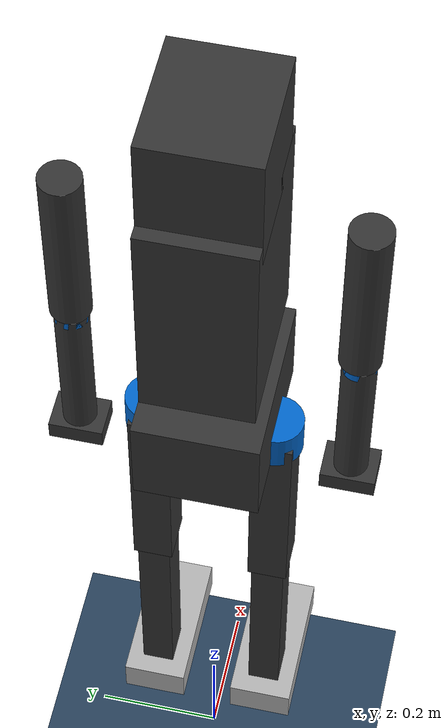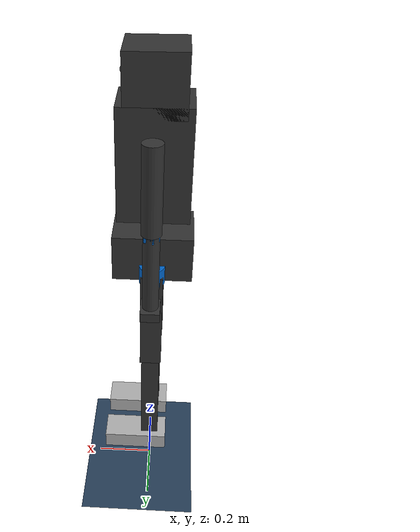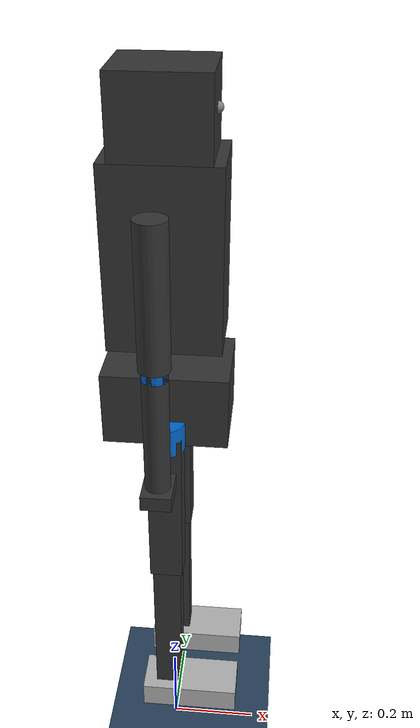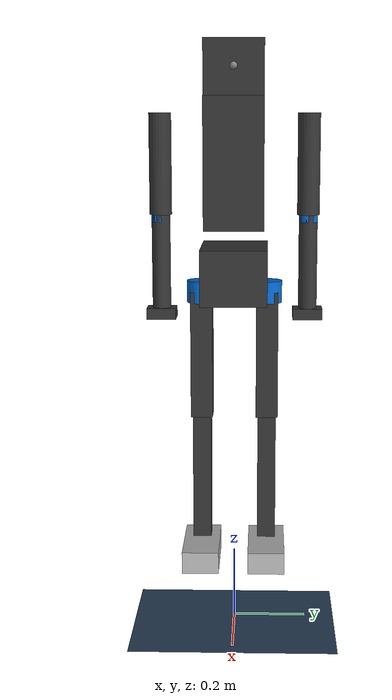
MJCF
<?xml version="1.0" encoding="utf-8"?>
<mujoco model="h1">

  <compiler angle="radian" autolimits="true"/>

  <option timestep="0.005" gravity="0 0 -9.81" iterations="50" solver="Newton">
    <flag multiccd="enable"/>
  </option>

  <size njmax="1000" nconmax="500"/>

  <default>
    <joint limited="true" damping="2.0" frictionloss="0.5" armature="0.01"/>
    <geom friction="0.8 0.02 0.001" condim="4" contype="1" conaffinity="1"/>
    <motor ctrllimited="true" ctrlrange="-300 300"/>
    <default class="leg_joint">
      <joint damping="5.0"/>
    </default>
    <default class="ankle_joint">
      <joint damping="1.0"/>
      <motor ctrlrange="-40 40"/>
    </default>
    <default class="arm_joint">
      <joint damping="1.0"/>
      <motor ctrlrange="-40 40"/>
    </default>
  </default>

  <asset>
    <texture type="skybox" builtin="gradient" rgb1=".3 .5 .7" rgb2="0 0 0" width="32" height="512"/>
    <texture name="groundplane" type="2d" builtin="checker" width="512" height="512"
             rgb1=".2 .3 .4" rgb2=".1 .2 .3" mark="edge" markrgb=".8 .8 .8"/>
    <material name="groundplane" texture="groundplane" texrepeat="5 5" texuniform="true" reflectance=".2"/>
    <material name="body" rgba=".2 .2 .2 1"/>
    <material name="joint_mat" rgba="0 .4 .8 1"/>
    <material name="foot_mat" rgba=".7 .7 .7 1"/>
  </asset>

  <worldbody>
    <light name="sun" pos="0 0 5" dir="0 0 -1" diffuse=".8 .8 .8" specular="0.3 0.3 0.3"
           directional="true" castshadow="true"/>
    <geom name="floor" type="plane" size="20 20 0.1" material="groundplane" condim="6"/>

    <!-- ─── Pelvis (floating base) ───────────────────────────────────────── -->
    <body name="pelvis" pos="0 0 1.0">
      <freejoint name="root"/>
      <inertial pos="0 0 0" mass="10.0"
                diaginertia="0.1 0.1 0.07"/>
      <geom name="pelvis_geom" type="box" size="0.125 0.09 0.075" material="body"/>
      <site name="imu_site" pos="0 0 0" size="0.01"/>

      <!-- ─── Torso ────────────────────────────────────────────────────── -->
      <body name="torso_link" pos="0 0 0.15">
        <inertial pos="0 0 0.15" mass="15.0"
                  diaginertia="0.2 0.18 0.08"/>
        <geom name="torso_geom" type="box" size="0.11 0.08 0.175" pos="0 0 0.15" material="body"/>

        <!-- Head -->
        <body name="head_link" pos="0 0 0.38">
          <inertial pos="0 0 0" mass="2.0" diaginertia="0.008 0.008 0.006"/>
          <geom name="head_geom" type="box" size="0.09 0.08 0.09" material="body"/>
          <site name="camera_front" pos="0.09 0 0.02" size="0.01"/>
        </body>

        <!-- ─── Left Arm ──────────────────────────────────────────────── -->
        <body name="left_upper_arm_link" pos="0 0.2 0.28">
          <inertial pos="0 0 -0.135" mass="2.0" diaginertia="0.01 0.01 0.001"/>
          <geom type="cylinder" size="0.03 0.135" pos="0 0 -0.135" material="body"/>
          <joint name="left_shoulder_pitch" class="arm_joint" axis="0 1 0" range="-3.14 3.14"/>

          <body name="left_upper_arm_roll_link" pos="0 0 -0.27">
            <inertial pos="0 0 0" mass="0.5" diaginertia="0.001 0.001 0.001"/>
            <geom type="cylinder" size="0.025 0.02" material="joint_mat"/>
            <joint name="left_shoulder_roll" class="arm_joint" axis="1 0 0" range="-1.57 1.57"/>

            <body name="left_lower_arm_link" pos="0 0 0">
              <inertial pos="0 0 -0.135" mass="1.5" diaginertia="0.007 0.007 0.001"/>
              <geom type="cylinder" size="0.025 0.135" pos="0 0 -0.135" material="body"/>
              <joint name="left_elbow" class="arm_joint" axis="0 1 0" range="-1.57 1.57"/>

              <body name="left_hand_link" pos="0 0 -0.27">
                <inertial pos="0 0 0" mass="0.5" diaginertia="0.001 0.001 0.001"/>
                <geom type="box" size="0.03 0.04 0.015" material="body"/>
                <joint name="left_wrist" class="arm_joint" axis="0 0 1" range="-1.57 1.57"/>
              </body>
            </body>
          </body>
        </body>

        <!-- ─── Right Arm ─────────────────────────────────────────────── -->
        <body name="right_upper_arm_link" pos="0 -0.2 0.28">
          <inertial pos="0 0 -0.135" mass="2.0" diaginertia="0.01 0.01 0.001"/>
          <geom type="cylinder" size="0.03 0.135" pos="0 0 -0.135" material="body"/>
          <joint name="right_shoulder_pitch" class="arm_joint" axis="0 1 0" range="-3.14 3.14"/>

          <body name="right_upper_arm_roll_link" pos="0 0 -0.27">
            <inertial pos="0 0 0" mass="0.5" diaginertia="0.001 0.001 0.001"/>
            <geom type="cylinder" size="0.025 0.02" material="joint_mat"/>
            <joint name="right_shoulder_roll" class="arm_joint" axis="1 0 0" range="-1.57 1.57"/>

            <body name="right_lower_arm_link" pos="0 0 0">
              <inertial pos="0 0 -0.135" mass="1.5" diaginertia="0.007 0.007 0.001"/>
              <geom type="cylinder" size="0.025 0.135" pos="0 0 -0.135" material="body"/>
              <joint name="right_elbow" class="arm_joint" axis="0 1 0" range="-1.57 1.57"/>

              <body name="right_hand_link" pos="0 0 -0.27">
                <inertial pos="0 0 0" mass="0.5" diaginertia="0.001 0.001 0.001"/>
                <geom type="box" size="0.03 0.04 0.015" material="body"/>
                <joint name="right_wrist" class="arm_joint" axis="0 0 1" range="-1.57 1.57"/>
              </body>
            </body>
          </body>
        </body>
      </body>

      <!-- ─── Left Leg ──────────────────────────────────────────────────── -->
      <body name="left_hip_yaw_link" pos="0 0.09 -0.05">
        <inertial pos="0 0 0" mass="1.5" diaginertia="0.003 0.003 0.002"/>
        <geom type="cylinder" size="0.04 0.03" material="joint_mat"/>
        <joint name="left_hip_yaw" class="leg_joint" axis="0 0 1" range="-0.785 0.785"/>

        <body name="left_hip_roll_link" pos="0 0 0">
          <inertial pos="0 0 0" mass="2.0" diaginertia="0.004 0.004 0.003"/>
          <geom type="cylinder" size="0.04 0.03" material="joint_mat"/>
          <joint name="left_hip_roll" class="leg_joint" axis="1 0 0" range="-0.523 0.523"/>

          <body name="left_thigh_link" pos="0 0 0">
            <inertial pos="0 0 -0.175" mass="5.0" diaginertia="0.05 0.05 0.005"/>
            <geom type="box" size="0.035 0.03 0.175" pos="0 0 -0.175" material="body"/>
            <joint name="left_hip_pitch" class="leg_joint" axis="0 1 0" range="-1.57 1.57"/>

            <body name="left_shank_link" pos="0 0 -0.35">
              <inertial pos="0 0 -0.175" mass="3.5" diaginertia="0.03 0.03 0.003"/>
              <geom type="box" size="0.03 0.025 0.175" pos="0 0 -0.175" material="body"/>
              <joint name="left_knee" class="leg_joint" axis="0 1 0" range="-0.087 2.443"/>

              <body name="left_ankle_link" pos="0 0 -0.35">
                <inertial pos="0.05 0 -0.03" mass="1.5" diaginertia="0.003 0.005 0.005"/>
                <geom type="box" size="0.11 0.05 0.03" pos="0.05 0 -0.03" material="foot_mat"
                      friction="1.0 0.005 0.0001"/>
                <site name="left_foot_site" pos="0.05 0 -0.06" size="0.01"/>
                <joint name="left_ankle" class="ankle_joint" axis="0 1 0" range="-0.785 0.785"/>
              </body>
            </body>
          </body>
        </body>
      </body>

      <!-- ─── Right Leg ─────────────────────────────────────────────────── -->
      <body name="right_hip_yaw_link" pos="0 -0.09 -0.05">
        <inertial pos="0 0 0" mass="1.5" diaginertia="0.003 0.003 0.002"/>
        <geom type="cylinder" size="0.04 0.03" material="joint_mat"/>
        <joint name="right_hip_yaw" class="leg_joint" axis="0 0 1" range="-0.785 0.785"/>

        <body name="right_hip_roll_link" pos="0 0 0">
          <inertial pos="0 0 0" mass="2.0" diaginertia="0.004 0.004 0.003"/>
          <geom type="cylinder" size="0.04 0.03" material="joint_mat"/>
          <joint name="right_hip_roll" class="leg_joint" axis="1 0 0" range="-0.523 0.523"/>

          <body name="right_thigh_link" pos="0 0 0">
            <inertial pos="0 0 -0.175" mass="5.0" diaginertia="0.05 0.05 0.005"/>
            <geom type="box" size="0.035 0.03 0.175" pos="0 0 -0.175" material="body"/>
            <joint name="right_hip_pitch" class="leg_joint" axis="0 1 0" range="-1.57 1.57"/>

            <body name="right_shank_link" pos="0 0 -0.35">
              <inertial pos="0 0 -0.175" mass="3.5" diaginertia="0.03 0.03 0.003"/>
              <geom type="box" size="0.03 0.025 0.175" pos="0 0 -0.175" material="body"/>
              <joint name="right_knee" class="leg_joint" axis="0 1 0" range="-0.087 2.443"/>

              <body name="right_ankle_link" pos="0 0 -0.35">
                <inertial pos="0.05 0 -0.03" mass="1.5" diaginertia="0.003 0.005 0.005"/>
                <geom type="box" size="0.11 0.05 0.03" pos="0.05 0 -0.03" material="foot_mat"
                      friction="1.0 0.005 0.0001"/>
                <site name="right_foot_site" pos="0.05 0 -0.06" size="0.01"/>
                <joint name="right_ankle" class="ankle_joint" axis="0 1 0" range="-0.785 0.785"/>
              </body>
            </body>
          </body>
        </body>
      </body>

    </body><!-- end pelvis -->
  </worldbody>

  <!-- ═══════════════════════════════════════════════════════════════
       Actuators
  ═══════════════════════════════════════════════════════════════ -->
  <actuator>
    <!-- Legs -->
    <motor name="left_hip_yaw_motor"   joint="left_hip_yaw"   ctrlrange="-200 200"/>
    <motor name="left_hip_roll_motor"  joint="left_hip_roll"  ctrlrange="-200 200"/>
    <motor name="left_hip_pitch_motor" joint="left_hip_pitch" ctrlrange="-200 200"/>
    <motor name="left_knee_motor"      joint="left_knee"      ctrlrange="-300 300"/>
    <motor name="left_ankle_motor"     joint="left_ankle"     ctrlrange="-40 40"/>
    <motor name="right_hip_yaw_motor"   joint="right_hip_yaw"   ctrlrange="-200 200"/>
    <motor name="right_hip_roll_motor"  joint="right_hip_roll"  ctrlrange="-200 200"/>
    <motor name="right_hip_pitch_motor" joint="right_hip_pitch" ctrlrange="-200 200"/>
    <motor name="right_knee_motor"      joint="right_knee"      ctrlrange="-300 300"/>
    <motor name="right_ankle_motor"     joint="right_ankle"     ctrlrange="-40 40"/>
    <!-- Arms -->
    <motor name="left_shoulder_pitch_motor" joint="left_shoulder_pitch" ctrlrange="-40 40"/>
    <motor name="left_shoulder_roll_motor"  joint="left_shoulder_roll"  ctrlrange="-40 40"/>
    <motor name="left_elbow_motor"          joint="left_elbow"          ctrlrange="-40 40"/>
    <motor name="left_wrist_motor"          joint="left_wrist"          ctrlrange="-10 10"/>
    <motor name="right_shoulder_pitch_motor" joint="right_shoulder_pitch" ctrlrange="-40 40"/>
    <motor name="right_shoulder_roll_motor"  joint="right_shoulder_roll"  ctrlrange="-40 40"/>
    <motor name="right_elbow_motor"          joint="right_elbow"          ctrlrange="-40 40"/>
    <motor name="right_wrist_motor"          joint="right_wrist"          ctrlrange="-10 10"/>
  </actuator>

  <!-- ═══════════════════════════════════════════════════════════════
       Sensors
  ═══════════════════════════════════════════════════════════════ -->
  <sensor>
    <!-- IMU sensors -->
    <gyro name="imu_gyro" site="imu_site"/>
    <accelerometer name="imu_accel" site="imu_site"/>
    <framequat name="imu_quat" objtype="site" objname="imu_site"/>
    <!-- Foot contact forces -->
    <touch name="left_foot_touch" site="left_foot_site"/>
    <touch name="right_foot_touch" site="right_foot_site"/>
  </sensor>

</mujoco>
